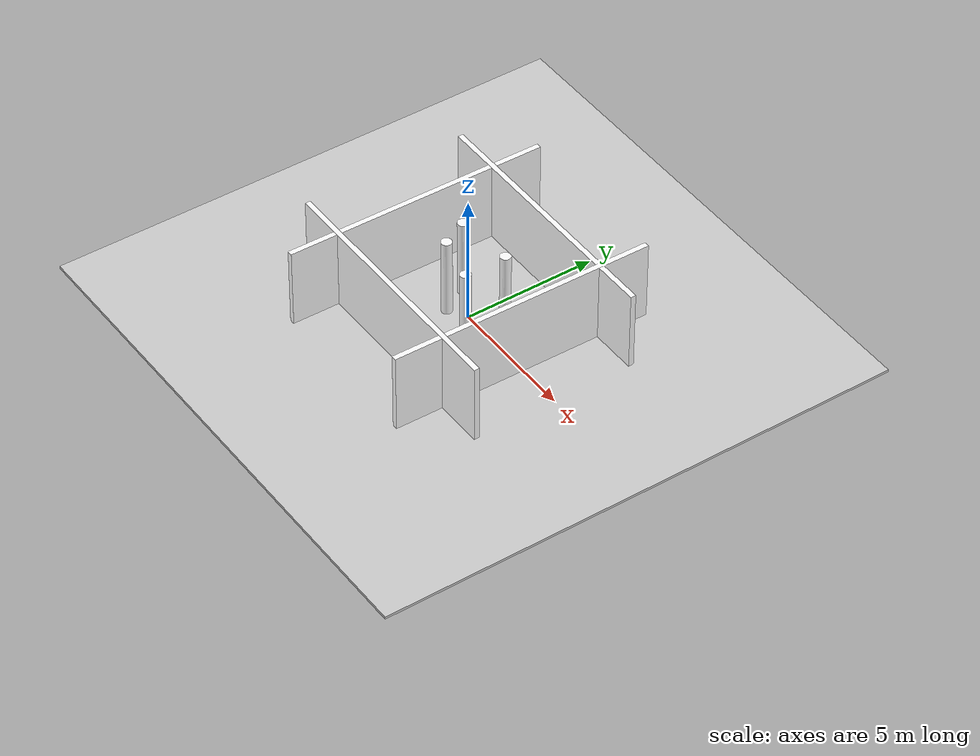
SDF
<?xml version="1.0"?>
<sdf version="1.8">
<world name="map">
    <physics name="1ms" type="ignored">
        <max_step_size>0.001</max_step_size>
        <real_time_factor>1.0</real_time_factor>
        <real_time_update_rate>500</real_time_update_rate>
    </physics>

    <plugin filename="libgz-sim-physics-system.so" name="gz::sim::systems::Physics" />
    <plugin filename="libgz-sim-sensors-system.so" name="gz::sim::systems::Sensors">
        <render_engine>ogre2</render_engine>
    </plugin>
    <plugin filename="libgz-sim-contact-system" name="gz::sim::systems::Contact" />
    <plugin filename="libgz-sim-imu-system" name="gz::sim::systems::Imu" />
    <plugin filename="libgz-sim-scene-broadcaster-system.so" name="gz::sim::systems::SceneBroadcaster" />
    <plugin filename="libgz-sim-user-commands-system.so" name="gz::sim::systems::UserCommands" />

    <!-- sun and ground -->
    <light type="directional" name="sun">
        <cast_shadows>true</cast_shadows>
        <pose>0 0 10 0 0 0</pose>
        <diffuse>0.8 0.8 0.8 1</diffuse>
        <specular>0.2 0.2 0.2 1</specular>
        <attenuation>
        <range>1000</range>
        <constant>0.9</constant>
        <linear>0.01</linear>
        <quadratic>0.001</quadratic>
        </attenuation>
        <direction>-0.5 0.1 -0.9</direction>
    </light>

    <model name="ground_plane">
        <static>true</static>
        <link name="link">
            <pose>0 0 -0.05 0 0 0</pose>
            <collision name="collision">
                <geometry>
                    <box>
                        <size>50 50 0.1</size>
                    </box>
                </geometry>
            </collision>
            <visual name="visual">
                <geometry>
                    <box>
                        <size>20 20 0.1</size>
                    </box>
                </geometry>
                <material>
                    <ambient>0.8 0.8 0.8 1</ambient>
                    <diffuse>0.8 0.8 0.8 1</diffuse>
                    <specular>0.8 0.8 0.8 1</specular>
                </material>
            </visual>
        </link>
    </model>

    <!-- obstacles -->
    <model name="w1">
        <pose>0 3.1 0 0 0 0</pose>
        <static>1</static>
        <link name="main">
            <visual name="wall">
                <pose>0 0 1.5 0 0 0</pose>
                <geometry>
                    <box><size>10 0.2 3.1</size></box>
                </geometry>
                <material>
                    <ambient>0.3 0.3 0.3 1</ambient>
                    <diffuse>1.0 1.0 1.0 1</diffuse>
                </material>
            </visual>
        </link>
    </model>

    <model name="w2">
        <pose>0 -3.1 0 0 0 0</pose>
        <static>1</static>
        <link name="main">
            <visual name="wall">
                <pose>0 0 1.5 0 0 0</pose>
                <geometry>
                    <box><size>10 0.2 3.1</size></box>
                </geometry>
                <material>
                    <ambient>0.3 0.3 0.3 1</ambient>
                    <diffuse>1.0 1.0 1.0 1</diffuse>
                </material>
            </visual>
        </link>
    </model>

    <model name="w3">
        <pose>3.1 0 0 0 0 1.56</pose>
        <static>1</static>
        <link name="main">
            <visual name="wall">
                <pose>0 0 1.5 0 0 0</pose>
                <geometry>
                    <box><size>10 0.2 3.1</size></box>
                </geometry>
                <material>
                    <ambient>0.3 0.3 0.3 1</ambient>
                    <diffuse>1.0 1.0 1.0 1</diffuse>
                </material>
            </visual>
        </link>
    </model>

    <model name="w4">
        <pose>-3.1 0 0 0 0 1.56</pose>
        <static>1</static>
        <link name="main">
            <visual name="wall">
                <pose>0 0 1.5 0 0 0</pose>
                <geometry>
                    <box><size>10 0.2 3.1</size></box>
                </geometry>
                <material>
                    <ambient>0.3 0.3 0.3 1</ambient>
                    <diffuse>1.0 1.0 1.0 1</diffuse>
                </material>
            </visual>
        </link>
    </model>

    <model name="p1">
        <static>1</static>
        <link name="main">
            <visual name="pillar">
                <pose>1 0.8 1.5 0 0 0</pose>
                <geometry>
                    <cylinder><radius>0.2</radius><length>3.1</length></cylinder>
                </geometry>
                <material>
                    <ambient>0.3 0.3 0.3 1</ambient>
                    <diffuse>1.0 1.0 1.0 1</diffuse>
                </material>
            </visual>
        </link>
    </model>

    <model name="p2">
        <static>1</static>
        <link name="main">
            <visual name="pillar">
                <pose>1 -0.8 1.5 0 0 0</pose>
                <geometry>
                    <cylinder><radius>0.2</radius><length>3.1</length></cylinder>
                </geometry>
                <material>
                    <ambient>0.3 0.3 0.3 1</ambient>
                    <diffuse>1.0 1.0 1.0 1</diffuse>
                </material>
            </visual>
        </link>
    </model>

    <model name="p3">
        <static>1</static>
        <link name="main">
            <visual name="pillar">
                <pose>-1.2 0.6 1.5 0 0 0</pose>
                <geometry>
                    <cylinder><radius>0.2</radius><length>3.1</length></cylinder>
                </geometry>
                <material>
                    <ambient>0.3 0.3 0.3 1</ambient>
                    <diffuse>1.0 1.0 1.0 1</diffuse>
                </material>
            </visual>
        </link>
    </model>

    <model name="p4">
        <static>1</static>
        <link name="main">
            <visual name="pillar">
                <pose>-0.7 -0.4 1.5 0 0 0</pose>
                <geometry>
                    <cylinder><radius>0.2</radius><length>3.1</length></cylinder>
                </geometry>
                <material>
                    <ambient>0.3 0.3 0.3 1</ambient>
                    <diffuse>1.0 1.0 1.0 1</diffuse>
                </material>
            </visual>
        </link>
    </model>

</world>
</sdf>
